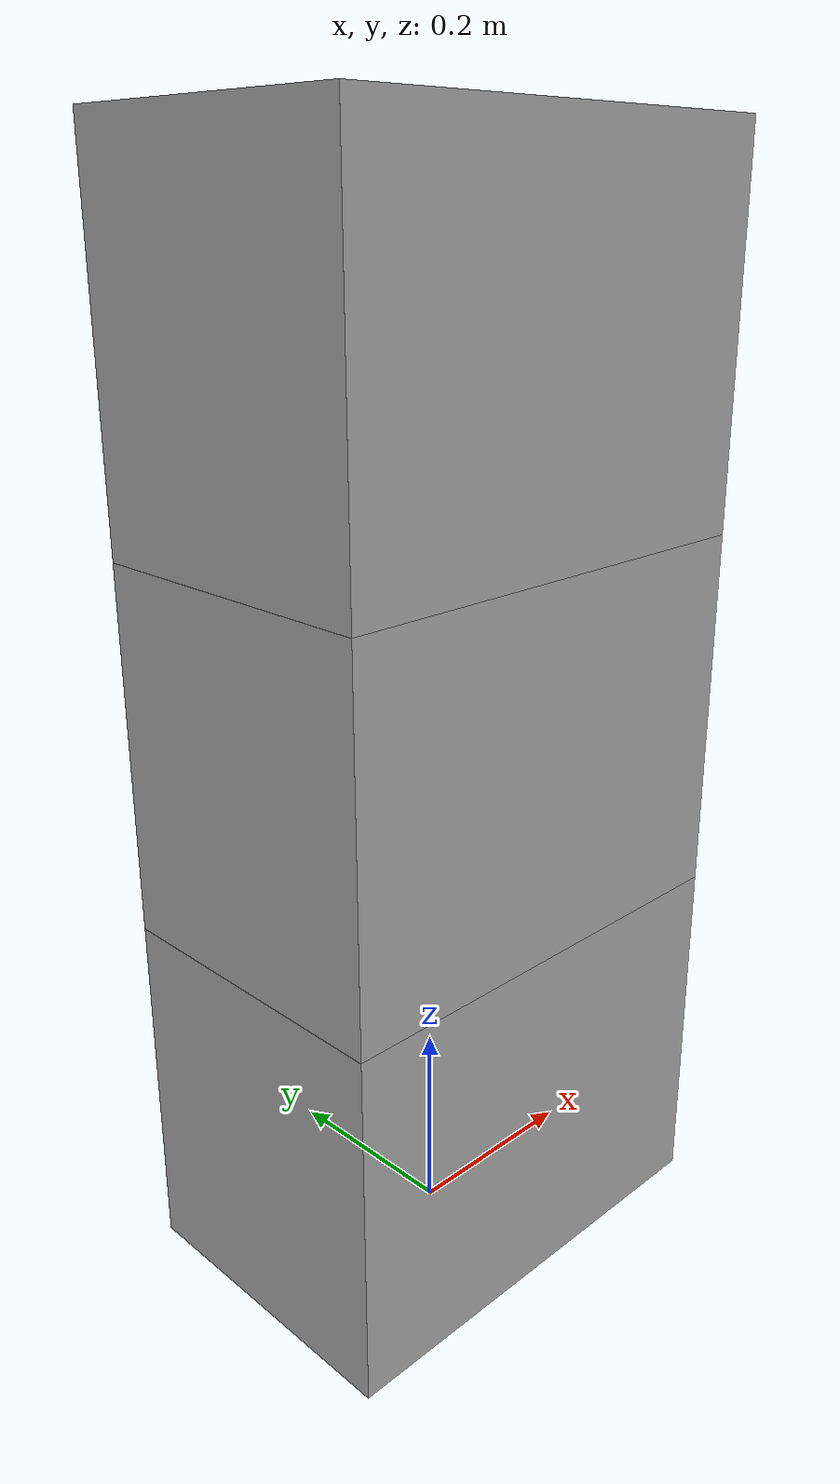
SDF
<?xml version='1_0'?>
<sdf version="1.5">
  <model name="1_stack">
    <pose>0 0 0 0 0 1.57079633</pose>
    <static>true</static>
    <!-- 1st row -->
    <link name="link_0">
      <collision name="collision_0">
        <pose>0 0 0.18 0 0 3.14</pose>
        <geometry>
          <box>
            <size>0.31 0.465 0.36</size>
          </box>
        </geometry>
      </collision>
      <visual name='visual_0'>
        <pose>0 0 0.18 0 0 3.14</pose>
        <geometry>
            <mesh>
              <uri>model://L-corridor_curve_real/meshes/exact_blue_circle_border.dae</uri>
            </mesh>
        </geometry>
      </visual>
    </link>

    <link name="link_1">
      <collision name="collision_1">
        <pose>0 0 0.54 0 0 3.14</pose>
        <geometry>
          <box>
            <size>0.31 0.465 0.36</size>
          </box>
        </geometry>
      </collision>
      <visual name='visual_1'>
        <pose>0 0 0.54 0 0 3.14</pose>
        <geometry>
            <mesh>
              <uri>model://L-corridor_curve_real/meshes/exact_red_circle_border.dae</uri>
            </mesh>
        </geometry>
      </visual>
    </link>

    <link name="link_2">
      <collision name="collision_2">
        <pose>0 0 0.9 0 0 3.14</pose>
        <geometry>
          <box>
            <size>0.31 0.465 0.36</size>
          </box>
        </geometry>
      </collision>
      <visual name='visual_2'>
        <pose>0 0 0.9 0 0 3.14</pose>
        <geometry>
            <mesh>
              <uri>model://L-corridor_curve_real/meshes/exact_green_circle_border.dae</uri>
            </mesh>
        </geometry>
      </visual>
    </link>

  </model>
</sdf>
